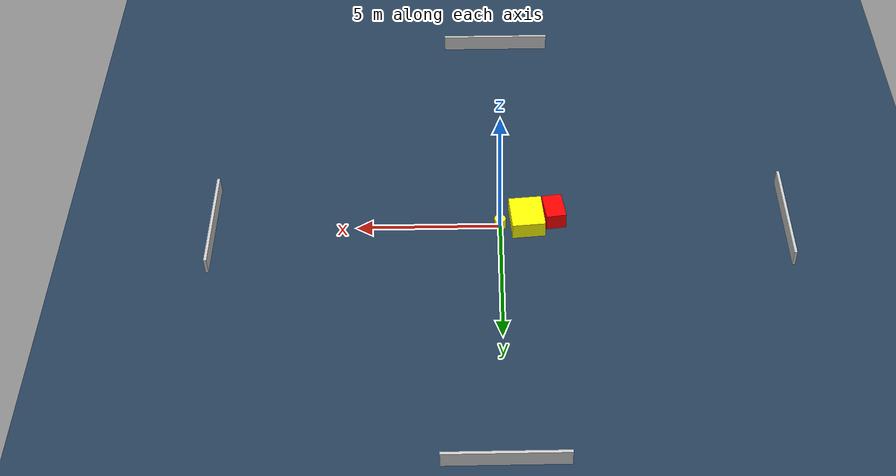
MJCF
<?xml version="1.0" ?>
<mujoco model="generated_environment">
  <option timestep="0.01" integrator="RK4" cone="elliptic"/>
  <default>
    <geom density="1"/>
  </default>
  <asset>
    <texture builtin="gradient" height="3072" name="skybox" rgb1="0.3 0.5 0.7" rgb2="0 0 0" type="skybox" width="512"/>
    <texture builtin="checker" height="300" name="groundplane" rgb1="0.2 0.3 0.4" rgb2="0.1 0.2 0.3" type="2d" width="300"/>
    <material name="groundplane" reflectance="0.2" texrepeat="5 5" texture="groundplane"/>
  </asset>
  <worldbody>
    <light dir="0 0 -1" directional="true" pos="0 0 1.5"/>
    <geom condim="3" friction="0.5 0.005 0.001" material="groundplane" name="floor" pos="0 0 0" size="0 0 0.05" type="plane"/>
    <body name="walls">
      <geom name="wall_1" condim="4" pos="-10.0 0.0 0.3" rgba="0.800000011920929 0.800000011920929 0.800000011920929 1.0" size="0.05 2.0 0.3" type="box"/>
      <geom name="wall_2" condim="4" pos="10.0 0.0 0.3" rgba="0.800000011920929 0.800000011920929 0.800000011920929 1.0" size="0.05 2.0 0.3" type="box"/>
      <geom name="wall_3" condim="4" pos="0.0 -10.0 0.3" rgba="0.800000011920929 0.800000011920929 0.800000011920929 1.0" size="2.0 0.05 0.3" type="box"/>
      <geom name="wall_4" condim="4" pos="0.0 10.0 0.3" rgba="0.800000011920929 0.800000011920929 0.800000011920929 1.0" size="2.0 0.05 0.3" type="box"/>
    </body>
    <body name="robot">
      <joint name="joint_x" type="slide" pos="0 0 0" axis="1 0 0"/>
      <joint name="joint_y" type="slide" pos="0 0 0" axis="0 1 0"/>
      <geom name="robot" type="cylinder" pos="0.0 0.0 0.2" size="0.2 0.2 0.0" mass="5.0" friction="1.0 0.005 0.0001" condim="4" rgba="1.0 1.0 0.0 1.0"/>
    </body>
    <body name="obstacle_1_movable">
      <geom name="obstacle_1_movable" condim="4" pos="-0.9393419117774217 -0.1499736979241547 0.3" euler="0 0 185.0047989175693" friction="0.0 0.005 0.001" rgba="1.0 1.0 0.0 1.0" size="0.5764893766813399 0.6818006945661838 0.3" type="box" mass="0.1"/>
      <joint type="free"/>
    </body>
    <body name="obstacle_2_static">
      <geom name="obstacle_2_static" condim="4" pos="-1.894800449759959 -0.40228830615069766 0.3" euler="0 0 277.9226881552389" friction="0.0 0.005 0.001" rgba="1.0 0.0 0.0 1.0" size="0.5251305179509743 0.34867862185682863 0.3" type="box"/>
    </body>
  </worldbody>
  <actuator>
    <motor name="actuator_x" joint="joint_x" gear="1" ctrlrange="-1 1"/>
    <motor name="actuator_y" joint="joint_y" gear="1" ctrlrange="-1 1"/>
  </actuator>
</mujoco>
